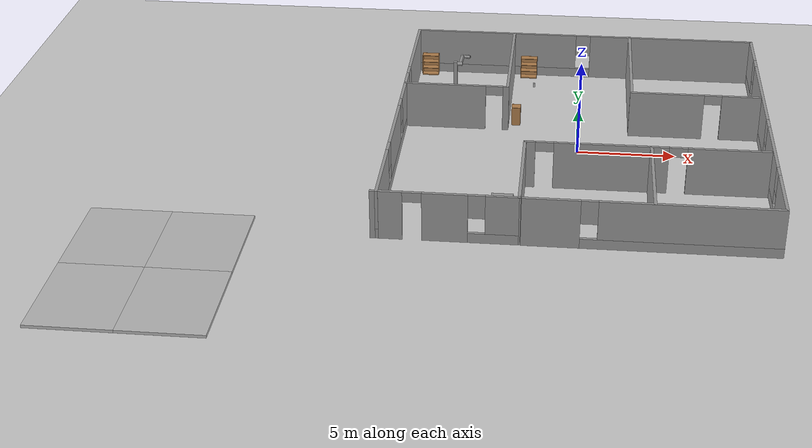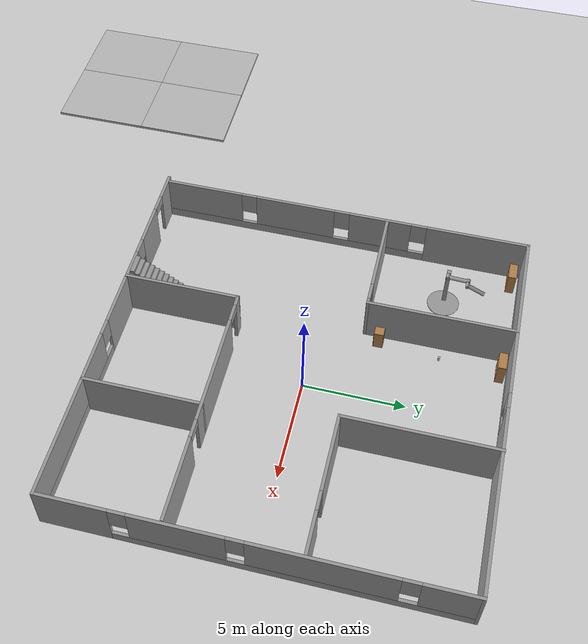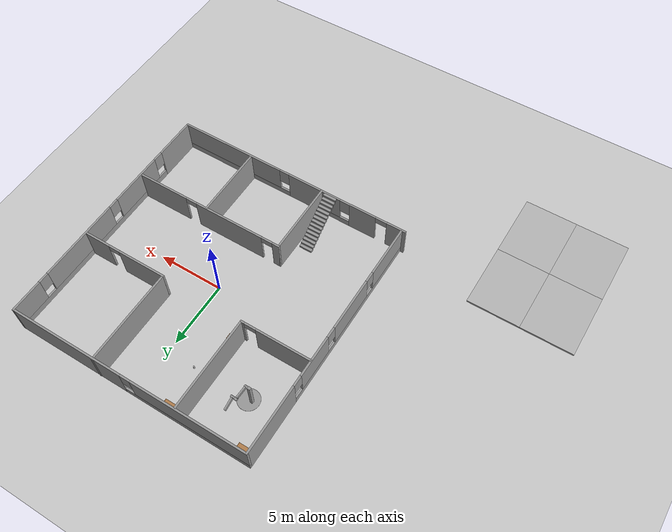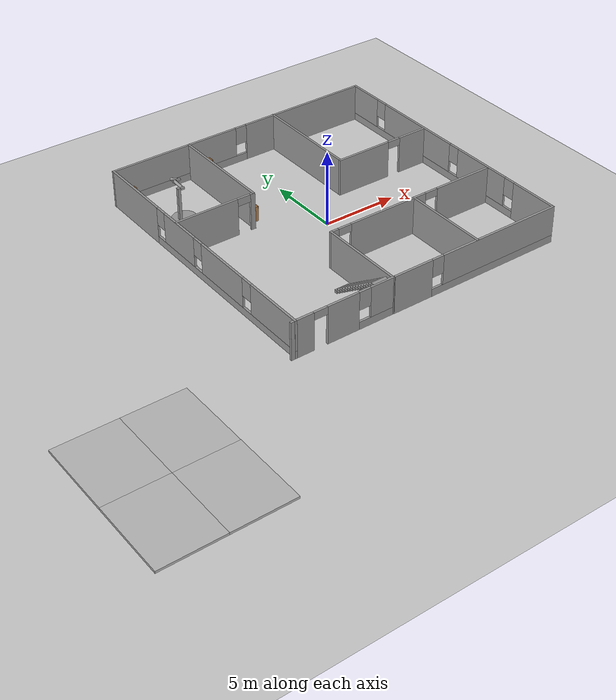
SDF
<sdf version="1.7">
 <world name="default">
  <model name="ground_plane">
   <static>1</static>
   <link name="link">
    <collision name="collision">
     <geometry><plane><normal>0 0 1</normal><size>100 100</size></plane></geometry>
     <surface><friction><ode><mu>100</mu><mu2>50</mu2></ode></friction></surface>
    </collision>
    <visual name="visual">
     <cast_shadows>0</cast_shadows>
     <geometry><plane><normal>0 0 1</normal><size>100 100</size></plane></geometry>
     <material>
      <script><uri>file://media/materials/scripts/gazebo.material</uri><name>Gazebo/Grey</name></script>
     </material>
    </visual>
   </link>
  </model>
  <model name="tony_house.world">
   <pose>0.003919 0.011841 0 0 -0 0</pose>
   <link name="Stairs_0">
    <visual name="Stairs_0_Visual_0">
     <pose>-3.39052 -5.99335 0.083333 0 -0 0</pose>
     <geometry><box><size>1 0.233333 0.166667</size></box></geometry>
     <material>
      <script><uri>file://media/materials/scripts/gazebo.material</uri><name>Gazebo/Grey</name></script>
      <ambient>1 1 1 1</ambient>
     </material>
     <meta><layer>0</layer></meta>
    </visual>
    <collision name="Stairs_0_Collision_0">
     <geometry><box><size>1 0.233333 0.166667</size></box></geometry>
     <pose>-3.39052 -5.99335 0.083333 0 -0 0</pose>
    </collision>
    <visual name="Stairs_0_Visual_1">
     <pose>-3.39052 -6.22668 0.25 0 -0 0</pose>
     <geometry><box><size>1 0.233333 0.166667</size></box></geometry>
     <material>
      <script><uri>file://media/materials/scripts/gazebo.material</uri><name>Gazebo/Grey</name></script>
      <ambient>1 1 1 1</ambient>
     </material>
     <meta><layer>0</layer></meta>
    </visual>
    <collision name="Stairs_0_Collision_1">
     <geometry><box><size>1 0.233333 0.166667</size></box></geometry>
     <pose>-3.39052 -6.22668 0.25 0 -0 0</pose>
    </collision>
    <visual name="Stairs_0_Visual_2">
     <pose>-3.39052 -6.46001 0.416667 0 -0 0</pose>
     <geometry><box><size>1 0.233333 0.166667</size></box></geometry>
     <material>
      <script><uri>file://media/materials/scripts/gazebo.material</uri><name>Gazebo/Grey</name></script>
      <ambient>1 1 1 1</ambient>
     </material>
     <meta><layer>0</layer></meta>
    </visual>
    <collision name="Stairs_0_Collision_2">
     <geometry><box><size>1 0.233333 0.166667</size></box></geometry>
     <pose>-3.39052 -6.46001 0.416667 0 -0 0</pose>
    </collision>
    <visual name="Stairs_0_Visual_3">
     <pose>-3.39052 -6.69335 0.583333 0 -0 0</pose>
     <geometry><box><size>1 0.233333 0.166667</size></box></geometry>
     <material>
      <script><uri>file://media/materials/scripts/gazebo.material</uri><name>Gazebo/Grey</name></script>
      <ambient>1 1 1 1</ambient>
     </material>
     <meta><layer>0</layer></meta>
    </visual>
    <collision name="Stairs_0_Collision_3">
     <geometry><box><size>1 0.233333 0.166667</size></box></geometry>
     <pose>-3.39052 -6.69335 0.583333 0 -0 0</pose>
    </collision>
    <visual name="Stairs_0_Visual_4">
     <pose>-3.39052 -6.92668 0.75 0 -0 0</pose>
     <geometry><box><size>1 0.233333 0.166667</size></box></geometry>
     <material>
      <script><uri>file://media/materials/scripts/gazebo.material</uri><name>Gazebo/Grey</name></script>
      <ambient>1 1 1 1</ambient>
     </material>
     <meta><layer>0</layer></meta>
    </visual>
    <collision name="Stairs_0_Collision_4">
     <geometry><box><size>1 0.233333 0.166667</size></box></geometry>
     <pose>-3.39052 -6.92668 0.75 0 -0 0</pose>
    </collision>
    <visual name="Stairs_0_Visual_5">
     <pose>-3.39052 -7.16001 0.916667 0 -0 0</pose>
     <geometry><box><size>1 0.233333 0.166667</size></box></geometry>
     <material>
      <script><uri>file://media/materials/scripts/gazebo.material</uri><name>Gazebo/Grey</name></script>
      <ambient>1 1 1 1</ambient>
     </material>
     <meta><layer>0</layer></meta>
    </visual>
    <collision name="Stairs_0_Collision_5">
     <geometry><box><size>1 0.233333 0.166667</size></box></geometry>
     <pose>-3.39052 -7.16001 0.916667 0 -0 0</pose>
    </collision>
    <visual name="Stairs_0_Visual_6">
     <pose>-3.39052 -7.39335 1.08333 0 -0 0</pose>
     <geometry><box><size>1 0.233333 0.166667</size></box></geometry>
     <material>
      <script><uri>file://media/materials/scripts/gazebo.material</uri><name>Gazebo/Grey</name></script>
      <ambient>1 1 1 1</ambient>
     </material>
     <meta><layer>0</layer></meta>
    </visual>
    <collision name="Stairs_0_Collision_6">
     <geometry><box><size>1 0.233333 0.166667</size></box></geometry>
     <pose>-3.39052 -7.39335 1.08333 0 -0 0</pose>
    </collision>
    <visual name="Stairs_0_Visual_7">
     <pose>-3.39052 -7.62668 1.25 0 -0 0</pose>
     <geometry><box><size>1 0.233333 0.166667</size></box></geometry>
     <material>
      <script><uri>file://media/materials/scripts/gazebo.material</uri><name>Gazebo/Grey</name></script>
      <ambient>1 1 1 1</ambient>
     </material>
     <meta><layer>0</layer></meta>
    </visual>
    <collision name="Stairs_0_Collision_7">
     <geometry><box><size>1 0.233333 0.166667</size></box></geometry>
     <pose>-3.39052 -7.62668 1.25 0 -0 0</pose>
    </collision>
    <visual name="Stairs_0_Visual_8">
     <pose>-3.39052 -7.86001 1.41667 0 -0 0</pose>
     <geometry><box><size>1 0.233333 0.166667</size></box></geometry>
     <material>
      <script><uri>file://media/materials/scripts/gazebo.material</uri><name>Gazebo/Grey</name></script>
      <ambient>1 1 1 1</ambient>
     </material>
     <meta><layer>0</layer></meta>
    </visual>
    <collision name="Stairs_0_Collision_8">
     <geometry><box><size>1 0.233333 0.166667</size></box></geometry>
     <pose>-3.39052 -7.86001 1.41667 0 -0 0</pose>
    </collision>
    <visual name="Stairs_0_Visual_9">
     <pose>-3.39052 -8.09335 1.58333 0 -0 0</pose>
     <geometry><box><size>1 0.233333 0.166667</size></box></geometry>
     <material>
      <script><uri>file://media/materials/scripts/gazebo.material</uri><name>Gazebo/Grey</name></script>
      <ambient>1 1 1 1</ambient>
     </material>
     <meta><layer>0</layer></meta>
    </visual>
    <collision name="Stairs_0_Collision_9">
     <geometry><box><size>1 0.233333 0.166667</size></box></geometry>
     <pose>-3.39052 -8.09335 1.58333 0 -0 0</pose>
    </collision>
    <visual name="Stairs_0_Visual_10">
     <pose>-3.39052 -8.32668 1.75 0 -0 0</pose>
     <geometry><box><size>1 0.233333 0.166667</size></box></geometry>
     <material>
      <script><uri>file://media/materials/scripts/gazebo.material</uri><name>Gazebo/Grey</name></script>
      <ambient>1 1 1 1</ambient>
     </material>
     <meta><layer>0</layer></meta>
    </visual>
    <collision name="Stairs_0_Collision_10">
     <geometry><box><size>1 0.233333 0.166667</size></box></geometry>
     <pose>-3.39052 -8.32668 1.75 0 -0 0</pose>
    </collision>
    <visual name="Stairs_0_Visual_11">
     <pose>-3.39052 -8.56001 1.91667 0 -0 0</pose>
     <geometry><box><size>1 0.233333 0.166667</size></box></geometry>
     <material>
      <script><uri>file://media/materials/scripts/gazebo.material</uri><name>Gazebo/Grey</name></script>
      <ambient>1 1 1 1</ambient>
     </material>
     <meta><layer>0</layer></meta>
    </visual>
    <collision name="Stairs_0_Collision_11">
     <geometry><box><size>1 0.233333 0.166667</size></box></geometry>
     <pose>-3.39052 -8.56001 1.91667 0 -0 0</pose>
    </collision>
    <visual name="Stairs_0_Visual_12">
     <pose>-3.39052 -8.79335 2.08333 0 -0 0</pose>
     <geometry><box><size>1 0.233333 0.166667</size></box></geometry>
     <material>
      <script><uri>file://media/materials/scripts/gazebo.material</uri><name>Gazebo/Grey</name></script>
      <ambient>1 1 1 1</ambient>
     </material>
     <meta><layer>0</layer></meta>
    </visual>
    <collision name="Stairs_0_Collision_12">
     <geometry><box><size>1 0.233333 0.166667</size></box></geometry>
     <pose>-3.39052 -8.79335 2.08333 0 -0 0</pose>
    </collision>
    <visual name="Stairs_0_Visual_13">
     <pose>-3.39052 -9.02668 2.25 0 -0 0</pose>
     <geometry><box><size>1 0.233333 0.166667</size></box></geometry>
     <material>
      <script><uri>file://media/materials/scripts/gazebo.material</uri><name>Gazebo/Grey</name></script>
      <ambient>1 1 1 1</ambient>
     </material>
     <meta><layer>0</layer></meta>
    </visual>
    <collision name="Stairs_0_Collision_13">
     <geometry><box><size>1 0.233333 0.166667</size></box></geometry>
     <pose>-3.39052 -9.02668 2.25 0 -0 0</pose>
    </collision>
    <visual name="Stairs_0_Visual_14">
     <pose>-3.39052 -9.26001 2.41667 0 -0 0</pose>
     <geometry><box><size>1 0.233333 0.166667</size></box></geometry>
     <material>
      <script><uri>file://media/materials/scripts/gazebo.material</uri><name>Gazebo/Grey</name></script>
      <ambient>1 1 1 1</ambient>
     </material>
     <meta><layer>0</layer></meta>
    </visual>
    <collision name="Stairs_0_Collision_14">
     <geometry><box><size>1 0.233333 0.166667</size></box></geometry>
     <pose>-3.39052 -9.26001 2.41667 0 -0 0</pose>
    </collision>
   </link>
   <link name="Wall_1">
    <pose>-6.01156 -9.43056 0 0 -0 0.001171</pose>
    <visual name="Wall_1_Visual_0">
     <pose>-2.72986 0 1.25 0 -0 0</pose>
     <geometry><box><size>1.51416 0.15 2.5</size></box></geometry>
     <material>
      <script><uri>file://media/materials/scripts/gazebo.material</uri><name>Gazebo/Grey</name></script>
      <ambient>1 1 1 1</ambient>
     </material>
     <meta><layer>0</layer></meta>
    </visual>
    <collision name="Wall_1_Collision_0">
     <geometry><box><size>1.51416 0.15 2.5</size></box></geometry>
     <pose>-2.72986 0 1.25 0 -0 0</pose>
    </collision>
    <visual name="Wall_1_Visual_1">
     <pose>-0.004916 0 1.25 0 -0 0</pose>
     <geometry><box><size>2.13573 0.15 2.5</size></box></geometry>
     <material>
      <script><uri>file://media/materials/scripts/gazebo.material</uri><name>Gazebo/Grey</name></script>
      <ambient>1 1 1 1</ambient>
     </material>
     <meta><layer>0</layer></meta>
    </visual>
    <collision name="Wall_1_Collision_1">
     <geometry><box><size>2.13573 0.15 2.5</size></box></geometry>
     <pose>-0.004916 0 1.25 0 -0 0</pose>
    </collision>
    <visual name="Wall_1_Visual_2">
     <pose>2.27494 0 0.25 0 -0 0</pose>
     <geometry><box><size>2.42399 0.15 0.5</size></box></geometry>
     <material>
      <script><uri>file://media/materials/scripts/gazebo.material</uri><name>Gazebo/Grey</name></script>
      <ambient>1 1 1 1</ambient>
     </material>
     <meta><layer>0</layer></meta>
    </visual>
    <collision name="Wall_1_Collision_2">
     <geometry><box><size>2.42399 0.15 0.5</size></box></geometry>
     <pose>2.27494 0 0.25 0 -0 0</pose>
    </collision>
    <visual name="Wall_1_Visual_3">
     <pose>2.67494 0 1.5 0 -0 0</pose>
     <geometry><box><size>1.62399 0.15 2</size></box></geometry>
     <material>
      <script><uri>file://media/materials/scripts/gazebo.material</uri><name>Gazebo/Grey</name></script>
      <ambient>1 1 1 1</ambient>
     </material>
     <meta><layer>0</layer></meta>
    </visual>
    <collision name="Wall_1_Collision_3">
     <geometry><box><size>1.62399 0.15 2</size></box></geometry>
     <pose>2.67494 0 1.5 0 -0 0</pose>
    </collision>
    <visual name="Wall_1_Visual_4">
     <pose>1.46295 0 1.9 0 -0 0</pose>
     <geometry><box><size>0.8 0.15 1.2</size></box></geometry>
     <material>
      <script><uri>file://media/materials/scripts/gazebo.material</uri><name>Gazebo/Grey</name></script>
      <ambient>1 1 1 1</ambient>
     </material>
     <meta><layer>0</layer></meta>
    </visual>
    <collision name="Wall_1_Collision_4">
     <geometry><box><size>0.8 0.15 1.2</size></box></geometry>
     <pose>1.46295 0 1.9 0 -0 0</pose>
    </collision>
    <visual name="Wall_1_Visual_5">
     <pose>-1.52278 0 2.25 0 -0 0</pose>
     <geometry><box><size>0.9 0.15 0.5</size></box></geometry>
     <material>
      <script><uri>file://media/materials/scripts/gazebo.material</uri><name>Gazebo/Grey</name></script>
      <ambient>1 1 1 1</ambient>
     </material>
     <meta><layer>0</layer></meta>
    </visual>
    <collision name="Wall_1_Collision_5">
     <geometry><box><size>0.9 0.15 0.5</size></box></geometry>
     <pose>-1.52278 0 2.25 0 -0 0</pose>
    </collision>
   </link>
   <link name="Wall_10">
    <pose>3.32538 -3.82656 0 0 -0 0</pose>
    <visual name="Wall_10_Visual_0">
     <pose>-5.70576 0 1.25 0 -0 0</pose>
     <geometry><box><size>0.588485 0.15 2.5</size></box></geometry>
     <material>
      <script><uri>file://media/materials/scripts/gazebo.material</uri><name>Gazebo/Grey</name></script>
      <ambient>1 1 1 1</ambient>
     </material>
     <meta><layer>0</layer></meta>
    </visual>
    <collision name="Wall_10_Collision_0">
     <geometry><box><size>0.588485 0.15 2.5</size></box></geometry>
     <pose>-5.70576 0 1.25 0 -0 0</pose>
    </collision>
    <visual name="Wall_10_Visual_1">
     <pose>-1.72323 0 1.25 0 -0 0</pose>
     <geometry><box><size>5.57657 0.15 2.5</size></box></geometry>
     <material>
      <script><uri>file://media/materials/scripts/gazebo.material</uri><name>Gazebo/Grey</name></script>
      <ambient>1 1 1 1</ambient>
     </material>
     <meta><layer>0</layer></meta>
    </visual>
    <collision name="Wall_10_Collision_1">
     <geometry><box><size>5.57657 0.15 2.5</size></box></geometry>
     <pose>-1.72323 0 1.25 0 -0 0</pose>
    </collision>
    <visual name="Wall_10_Visual_2">
     <pose>3.98253 0 1.25 0 -0 0</pose>
     <geometry><box><size>4.03494 0.15 2.5</size></box></geometry>
     <material>
      <script><uri>file://media/materials/scripts/gazebo.material</uri><name>Gazebo/Grey</name></script>
      <ambient>1 1 1 1</ambient>
     </material>
     <meta><layer>0</layer></meta>
    </visual>
    <collision name="Wall_10_Collision_2">
     <geometry><box><size>4.03494 0.15 2.5</size></box></geometry>
     <pose>3.98253 0 1.25 0 -0 0</pose>
    </collision>
    <visual name="Wall_10_Visual_3">
     <pose>-4.96152 0 2.25 0 -0 0</pose>
     <geometry><box><size>0.9 0.15 0.5</size></box></geometry>
     <material>
      <script><uri>file://media/materials/scripts/gazebo.material</uri><name>Gazebo/Grey</name></script>
      <ambient>1 1 1 1</ambient>
     </material>
     <meta><layer>0</layer></meta>
    </visual>
    <collision name="Wall_10_Collision_3">
     <geometry><box><size>0.9 0.15 0.5</size></box></geometry>
     <pose>-4.96152 0 2.25 0 -0 0</pose>
    </collision>
    <visual name="Wall_10_Visual_4">
     <pose>1.51506 0 2.25 0 -0 0</pose>
     <geometry><box><size>0.9 0.15 0.5</size></box></geometry>
     <material>
      <script><uri>file://media/materials/scripts/gazebo.material</uri><name>Gazebo/Grey</name></script>
      <ambient>1 1 1 1</ambient>
     </material>
     <meta><layer>0</layer></meta>
    </visual>
    <collision name="Wall_10_Collision_4">
     <geometry><box><size>0.9 0.15 0.5</size></box></geometry>
     <pose>1.51506 0 2.25 0 -0 0</pose>
    </collision>
   </link>
   <link name="Wall_12">
    <collision name="Wall_12_Collision">
     <geometry><box><size>5.75 0.15 2.5</size></box></geometry>
     <pose>0 0 1.25 0 -0 0</pose>
    </collision>
    <visual name="Wall_12_Visual">
     <pose>0 0 1.25 0 -0 0</pose>
     <geometry><box><size>5.75 0.15 2.5</size></box></geometry>
     <material>
      <script><uri>file://media/materials/scripts/gazebo.material</uri><name>Gazebo/Grey</name></script>
      <ambient>1 1 1 1</ambient>
     </material>
     <meta><layer>0</layer></meta>
    </visual>
    <pose>3.54453 -6.62656 0 0 -0 -1.5708</pose>
   </link>
   <link name="Wall_14">
    <pose>5.98556 2.23237 0 0 -0 0</pose>
    <visual name="Wall_14_Visual_0">
     <pose>-1.46444 0 1.25 0 -0 0</pose>
     <geometry><box><size>3.82112 0.15 2.5</size></box></geometry>
     <material>
      <script><uri>file://media/materials/scripts/gazebo.material</uri><name>Gazebo/Grey</name></script>
      <ambient>1 1 1 1</ambient>
     </material>
     <meta><layer>0</layer></meta>
    </visual>
    <collision name="Wall_14_Collision_0">
     <geometry><box><size>3.82112 0.15 2.5</size></box></geometry>
     <pose>-1.46444 0 1.25 0 -0 0</pose>
    </collision>
    <visual name="Wall_14_Visual_1">
     <pose>2.36056 0 1.25 0 -0 0</pose>
     <geometry><box><size>2.02888 0.15 2.5</size></box></geometry>
     <material>
      <script><uri>file://media/materials/scripts/gazebo.material</uri><name>Gazebo/Grey</name></script>
      <ambient>1 1 1 1</ambient>
     </material>
     <meta><layer>0</layer></meta>
    </visual>
    <collision name="Wall_14_Collision_1">
     <geometry><box><size>2.02888 0.15 2.5</size></box></geometry>
     <pose>2.36056 0 1.25 0 -0 0</pose>
    </collision>
    <visual name="Wall_14_Visual_2">
     <pose>0.896121 0 2.25 0 -0 0</pose>
     <geometry><box><size>0.9 0.15 0.5</size></box></geometry>
     <material>
      <script><uri>file://media/materials/scripts/gazebo.material</uri><name>Gazebo/Grey</name></script>
      <ambient>1 1 1 1</ambient>
     </material>
     <meta><layer>0</layer></meta>
    </visual>
    <collision name="Wall_14_Collision_2">
     <geometry><box><size>0.9 0.15 0.5</size></box></geometry>
     <pose>0.896121 0 2.25 0 -0 0</pose>
    </collision>
   </link>
   <link name="Wall_18">
    <collision name="Wall_18_Collision">
     <geometry><box><size>7.25 0.15 2.5</size></box></geometry>
     <pose>0 0 1.25 0 -0 0</pose>
    </collision>
    <visual name="Wall_18_Visual">
     <pose>0 0 1.25 0 -0 0</pose>
     <geometry><box><size>7.25 0.15 2.5</size></box></geometry>
     <material>
      <script><uri>file://media/materials/scripts/gazebo.material</uri><name>Gazebo/Grey</name></script>
      <ambient>1 1 1 1</ambient>
     </material>
     <meta><layer>0</layer></meta>
    </visual>
    <pose>-3.77724 5.84349 0 0 -0 -1.5708</pose>
   </link>
   <link name="Wall_20">
    <collision name="Wall_20_Collision">
     <geometry><box><size>7.25 0.15 2.5</size></box></geometry>
     <pose>0 0 1.25 0 -0 0</pose>
    </collision>
    <visual name="Wall_20_Visual">
     <pose>0 0 1.25 0 -0 0</pose>
     <geometry><box><size>7.25 0.15 2.5</size></box></geometry>
     <material>
      <script><uri>file://media/materials/scripts/gazebo.material</uri><name>Gazebo/Grey</name></script>
      <ambient>1 1 1 1</ambient>
     </material>
     <meta><layer>0</layer></meta>
    </visual>
    <pose>2.68958 5.89002 0 0 -0 -1.5708</pose>
   </link>
   <link name="Wall_22">
    <pose>-6.45224 2.29349 0 0 -0 3.14159</pose>
    <visual name="Wall_22_Visual_0">
     <pose>-2.58857 0 1.25 0 -0 0</pose>
     <geometry><box><size>0.322859 0.15 2.5</size></box></geometry>
     <material>
      <script><uri>file://media/materials/scripts/gazebo.material</uri><name>Gazebo/Grey</name></script>
      <ambient>1 1 1 1</ambient>
     </material>
     <meta><layer>0</layer></meta>
    </visual>
    <collision name="Wall_22_Collision_0">
     <geometry><box><size>0.322859 0.15 2.5</size></box></geometry>
     <pose>-2.58857 0 1.25 0 -0 0</pose>
    </collision>
    <visual name="Wall_22_Visual_1">
     <pose>0.611429 0 1.25 0 -0 0</pose>
     <geometry><box><size>4.27714 0.15 2.5</size></box></geometry>
     <material>
      <script><uri>file://media/materials/scripts/gazebo.material</uri><name>Gazebo/Grey</name></script>
      <ambient>1 1 1 1</ambient>
     </material>
     <meta><layer>0</layer></meta>
    </visual>
    <collision name="Wall_22_Collision_1">
     <geometry><box><size>4.27714 0.15 2.5</size></box></geometry>
     <pose>0.611429 0 1.25 0 -0 0</pose>
    </collision>
    <visual name="Wall_22_Visual_2">
     <pose>-1.97714 0 2.25 0 -0 0</pose>
     <geometry><box><size>0.9 0.15 0.5</size></box></geometry>
     <material>
      <script><uri>file://media/materials/scripts/gazebo.material</uri><name>Gazebo/Grey</name></script>
      <ambient>1 1 1 1</ambient>
     </material>
     <meta><layer>0</layer></meta>
    </visual>
    <collision name="Wall_22_Collision_2">
     <geometry><box><size>0.9 0.15 0.5</size></box></geometry>
     <pose>-1.97714 0 2.25 0 -0 0</pose>
    </collision>
   </link>
   <link name="Wall_24">
    <collision name="Wall_24_Collision">
     <geometry><box><size>5.75 0.15 2.5</size></box></geometry>
     <pose>0 0 1.25 0 -0 0</pose>
    </collision>
    <visual name="Wall_24_Visual">
     <pose>0 0 1.25 0 -0 0</pose>
     <geometry><box><size>5.75 0.15 2.5</size></box></geometry>
     <material>
      <script><uri>file://media/materials/scripts/gazebo.material</uri><name>Gazebo/Grey</name></script>
      <ambient>1 1 1 1</ambient>
     </material>
     <meta><layer>0</layer></meta>
    </visual>
    <pose>-2.59962 -6.62656 0 0 -0 -1.5708</pose>
   </link>
   <link name="Wall_3">
    <pose>3.49858 -9.44002 0 0 -0 0</pose>
    <visual name="Wall_3_Visual_0">
     <pose>-4.64469 0 1.25 0 -0 0</pose>
     <geometry><box><size>2.71062 0.15 2.5</size></box></geometry>
     <material>
      <script><uri>file://media/materials/scripts/gazebo.material</uri><name>Gazebo/Grey</name></script>
      <ambient>1 1 1 1</ambient>
     </material>
     <meta><layer>0</layer></meta>
    </visual>
    <collision name="Wall_3_Collision_0">
     <geometry><box><size>2.71062 0.15 2.5</size></box></geometry>
     <pose>-4.64469 0 1.25 0 -0 0</pose>
    </collision>
    <visual name="Wall_3_Visual_1">
     <pose>1.35531 0 0.25 0 -0 0</pose>
     <geometry><box><size>9.28938 0.15 0.5</size></box></geometry>
     <material>
      <script><uri>file://media/materials/scripts/gazebo.material</uri><name>Gazebo/Grey</name></script>
      <ambient>1 1 1 1</ambient>
     </material>
     <meta><layer>0</layer></meta>
    </visual>
    <collision name="Wall_3_Collision_1">
     <geometry><box><size>9.28938 0.15 0.5</size></box></geometry>
     <pose>1.35531 0 0.25 0 -0 0</pose>
    </collision>
    <visual name="Wall_3_Visual_2">
     <pose>1.75531 0 1.5 0 -0 0</pose>
     <geometry><box><size>8.48938 0.15 2</size></box></geometry>
     <material>
      <script><uri>file://media/materials/scripts/gazebo.material</uri><name>Gazebo/Grey</name></script>
      <ambient>1 1 1 1</ambient>
     </material>
     <meta><layer>0</layer></meta>
    </visual>
    <collision name="Wall_3_Collision_2">
     <geometry><box><size>8.48938 0.15 2</size></box></geometry>
     <pose>1.75531 0 1.5 0 -0 0</pose>
    </collision>
    <visual name="Wall_3_Visual_3">
     <pose>-2.88938 0 1.9 0 -0 0</pose>
     <geometry><box><size>0.8 0.15 1.2</size></box></geometry>
     <material>
      <script><uri>file://media/materials/scripts/gazebo.material</uri><name>Gazebo/Grey</name></script>
      <ambient>1 1 1 1</ambient>
     </material>
     <meta><layer>0</layer></meta>
    </visual>
    <collision name="Wall_3_Collision_3">
     <geometry><box><size>0.8 0.15 1.2</size></box></geometry>
     <pose>-2.88938 0 1.9 0 -0 0</pose>
    </collision>
   </link>
   <link name="Wall_4">
    <pose>9.42358 -0.015016 0 0 -0 1.5708</pose>
    <visual name="Wall_4_Visual_0">
     <pose>-7.8218 0 1.25 0 -0 0</pose>
     <geometry><box><size>3.3564 0.15 2.5</size></box></geometry>
     <material>
      <script><uri>file://media/materials/scripts/gazebo.material</uri><name>Gazebo/Grey</name></script>
      <ambient>1 1 1 1</ambient>
     </material>
     <meta><layer>0</layer></meta>
    </visual>
    <collision name="Wall_4_Collision_0">
     <geometry><box><size>3.3564 0.15 2.5</size></box></geometry>
     <pose>-7.8218 0 1.25 0 -0 0</pose>
    </collision>
    <visual name="Wall_4_Visual_1">
     <pose>1.6782 0 0.25 0 -0 0</pose>
     <geometry><box><size>15.6436 0.15 0.5</size></box></geometry>
     <material>
      <script><uri>file://media/materials/scripts/gazebo.material</uri><name>Gazebo/Grey</name></script>
      <ambient>1 1 1 1</ambient>
     </material>
     <meta><layer>0</layer></meta>
    </visual>
    <collision name="Wall_4_Collision_1">
     <geometry><box><size>15.6436 0.15 0.5</size></box></geometry>
     <pose>1.6782 0 0.25 0 -0 0</pose>
    </collision>
    <visual name="Wall_4_Visual_2">
     <pose>-3.21561 0 1.5 0 -0 0</pose>
     <geometry><box><size>4.25599 0.15 2</size></box></geometry>
     <material>
      <script><uri>file://media/materials/scripts/gazebo.material</uri><name>Gazebo/Grey</name></script>
      <ambient>1 1 1 1</ambient>
     </material>
     <meta><layer>0</layer></meta>
    </visual>
    <collision name="Wall_4_Collision_2">
     <geometry><box><size>4.25599 0.15 2</size></box></geometry>
     <pose>-3.21561 0 1.5 0 -0 0</pose>
    </collision>
    <visual name="Wall_4_Visual_3">
     <pose>2.94431 0 1.5 0 -0 0</pose>
     <geometry><box><size>6.46384 0.15 2</size></box></geometry>
     <material>
      <script><uri>file://media/materials/scripts/gazebo.material</uri><name>Gazebo/Grey</name></script>
      <ambient>1 1 1 1</ambient>
     </material>
     <meta><layer>0</layer></meta>
    </visual>
    <collision name="Wall_4_Collision_3">
     <geometry><box><size>6.46384 0.15 2</size></box></geometry>
     <pose>2.94431 0 1.5 0 -0 0</pose>
    </collision>
    <visual name="Wall_4_Visual_4">
     <pose>8.23811 0 1.5 0 -0 0</pose>
     <geometry><box><size>2.52377 0.15 2</size></box></geometry>
     <material>
      <script><uri>file://media/materials/scripts/gazebo.material</uri><name>Gazebo/Grey</name></script>
      <ambient>1 1 1 1</ambient>
     </material>
     <meta><layer>0</layer></meta>
    </visual>
    <collision name="Wall_4_Collision_4">
     <geometry><box><size>2.52377 0.15 2</size></box></geometry>
     <pose>8.23811 0 1.5 0 -0 0</pose>
    </collision>
    <visual name="Wall_4_Visual_5">
     <pose>-5.7436 0 1.9 0 -0 0</pose>
     <geometry><box><size>0.8 0.15 1.2</size></box></geometry>
     <material>
      <script><uri>file://media/materials/scripts/gazebo.material</uri><name>Gazebo/Grey</name></script>
      <ambient>1 1 1 1</ambient>
     </material>
     <meta><layer>0</layer></meta>
    </visual>
    <collision name="Wall_4_Collision_5">
     <geometry><box><size>0.8 0.15 1.2</size></box></geometry>
     <pose>-5.7436 0 1.9 0 -0 0</pose>
    </collision>
    <visual name="Wall_4_Visual_6">
     <pose>-0.687612 0 1.9 0 -0 0</pose>
     <geometry><box><size>0.8 0.15 1.2</size></box></geometry>
     <material>
      <script><uri>file://media/materials/scripts/gazebo.material</uri><name>Gazebo/Grey</name></script>
      <ambient>1 1 1 1</ambient>
     </material>
     <meta><layer>0</layer></meta>
    </visual>
    <collision name="Wall_4_Collision_6">
     <geometry><box><size>0.8 0.15 1.2</size></box></geometry>
     <pose>-0.687612 0 1.9 0 -0 0</pose>
    </collision>
    <visual name="Wall_4_Visual_7">
     <pose>6.57623 0 1.9 0 -0 0</pose>
     <geometry><box><size>0.8 0.15 1.2</size></box></geometry>
     <material>
      <script><uri>file://media/materials/scripts/gazebo.material</uri><name>Gazebo/Grey</name></script>
      <ambient>1 1 1 1</ambient>
     </material>
     <meta><layer>0</layer></meta>
    </visual>
    <collision name="Wall_4_Collision_7">
     <geometry><box><size>0.8 0.15 1.2</size></box></geometry>
     <pose>6.57623 0 1.9 0 -0 0</pose>
    </collision>
   </link>
   <link name="Wall_5">
    <pose>0.123583 9.40998 0 0 -0 3.14159</pose>
    <visual name="Wall_5_Visual_0">
     <pose>-4.87823 0 1.25 0 -0 0</pose>
     <geometry><box><size>8.99354 0.15 2.5</size></box></geometry>
     <material>
      <script><uri>file://media/materials/scripts/gazebo.material</uri><name>Gazebo/Grey</name></script>
      <ambient>1 1 1 1</ambient>
     </material>
     <meta><layer>0</layer></meta>
    </visual>
    <collision name="Wall_5_Collision_0">
     <geometry><box><size>8.99354 0.15 2.5</size></box></geometry>
     <pose>-4.87823 0 1.25 0 -0 0</pose>
    </collision>
    <visual name="Wall_5_Visual_1">
     <pose>4.49677 0 0.25 0 -0 0</pose>
     <geometry><box><size>9.75646 0.15 0.5</size></box></geometry>
     <material>
      <script><uri>file://media/materials/scripts/gazebo.material</uri><name>Gazebo/Grey</name></script>
      <ambient>1 1 1 1</ambient>
     </material>
     <meta><layer>0</layer></meta>
    </visual>
    <collision name="Wall_5_Collision_1">
     <geometry><box><size>9.75646 0.15 0.5</size></box></geometry>
     <pose>4.49677 0 0.25 0 -0 0</pose>
    </collision>
    <visual name="Wall_5_Visual_2">
     <pose>4.89677 0 1.5 0 -0 0</pose>
     <geometry><box><size>8.95646 0.15 2</size></box></geometry>
     <material>
      <script><uri>file://media/materials/scripts/gazebo.material</uri><name>Gazebo/Grey</name></script>
      <ambient>1 1 1 1</ambient>
     </material>
     <meta><layer>0</layer></meta>
    </visual>
    <collision name="Wall_5_Collision_2">
     <geometry><box><size>8.95646 0.15 2</size></box></geometry>
     <pose>4.89677 0 1.5 0 -0 0</pose>
    </collision>
    <visual name="Wall_5_Visual_3">
     <pose>0.018538 0 1.9 0 -0 0</pose>
     <geometry><box><size>0.8 0.15 1.2</size></box></geometry>
     <material>
      <script><uri>file://media/materials/scripts/gazebo.material</uri><name>Gazebo/Grey</name></script>
      <ambient>1 1 1 1</ambient>
     </material>
     <meta><layer>0</layer></meta>
    </visual>
    <collision name="Wall_5_Collision_3">
     <geometry><box><size>0.8 0.15 1.2</size></box></geometry>
     <pose>0.018538 0 1.9 0 -0 0</pose>
    </collision>
   </link>
   <link name="Wall_6">
    <pose>-9.17642 -0.015016 0 0 -0 -1.5708</pose>
    <visual name="Wall_6_Visual_0">
     <pose>-6.9156 0 1.25 0 -0 0</pose>
     <geometry><box><size>5.1688 0.15 2.5</size></box></geometry>
     <material>
      <script><uri>file://media/materials/scripts/gazebo.material</uri><name>Gazebo/Grey</name></script>
      <ambient>1 1 1 1</ambient>
     </material>
     <meta><layer>0</layer></meta>
    </visual>
    <collision name="Wall_6_Collision_0">
     <geometry><box><size>5.1688 0.15 2.5</size></box></geometry>
     <pose>-6.9156 0 1.25 0 -0 0</pose>
    </collision>
    <visual name="Wall_6_Visual_1">
     <pose>2.5844 0 0.25 0 -0 0</pose>
     <geometry><box><size>13.8312 0.15 0.5</size></box></geometry>
     <material>
      <script><uri>file://media/materials/scripts/gazebo.material</uri><name>Gazebo/Grey</name></script>
      <ambient>1 1 1 1</ambient>
     </material>
     <meta><layer>0</layer></meta>
    </visual>
    <collision name="Wall_6_Collision_1">
     <geometry><box><size>13.8312 0.15 0.5</size></box></geometry>
     <pose>2.5844 0 0.25 0 -0 0</pose>
    </collision>
    <visual name="Wall_6_Visual_2">
     <pose>-1.94373 0 1.5 0 -0 0</pose>
     <geometry><box><size>3.17493 0.15 2</size></box></geometry>
     <material>
      <script><uri>file://media/materials/scripts/gazebo.material</uri><name>Gazebo/Grey</name></script>
      <ambient>1 1 1 1</ambient>
     </material>
     <meta><layer>0</layer></meta>
    </visual>
    <collision name="Wall_6_Collision_2">
     <geometry><box><size>3.17493 0.15 2</size></box></geometry>
     <pose>-1.94373 0 1.5 0 -0 0</pose>
    </collision>
    <visual name="Wall_6_Visual_3">
     <pose>2.50201 0 1.5 0 -0 0</pose>
     <geometry><box><size>4.11655 0.15 2</size></box></geometry>
     <material>
      <script><uri>file://media/materials/scripts/gazebo.material</uri><name>Gazebo/Grey</name></script>
      <ambient>1 1 1 1</ambient>
     </material>
     <meta><layer>0</layer></meta>
    </visual>
    <collision name="Wall_6_Collision_3">
     <geometry><box><size>4.11655 0.15 2</size></box></geometry>
     <pose>2.50201 0 1.5 0 -0 0</pose>
    </collision>
    <visual name="Wall_6_Visual_4">
     <pose>7.43014 0 1.5 0 -0 0</pose>
     <geometry><box><size>4.13971 0.15 2</size></box></geometry>
     <material>
      <script><uri>file://media/materials/scripts/gazebo.material</uri><name>Gazebo/Grey</name></script>
      <ambient>1 1 1 1</ambient>
     </material>
     <meta><layer>0</layer></meta>
    </visual>
    <collision name="Wall_6_Collision_4">
     <geometry><box><size>4.13971 0.15 2</size></box></geometry>
     <pose>7.43014 0 1.5 0 -0 0</pose>
    </collision>
    <visual name="Wall_6_Visual_5">
     <pose>-3.9312 0 1.9 0 -0 0</pose>
     <geometry><box><size>0.8 0.15 1.2</size></box></geometry>
     <material>
      <script><uri>file://media/materials/scripts/gazebo.material</uri><name>Gazebo/Grey</name></script>
      <ambient>1 1 1 1</ambient>
     </material>
     <meta><layer>0</layer></meta>
    </visual>
    <collision name="Wall_6_Collision_5">
     <geometry><box><size>0.8 0.15 1.2</size></box></geometry>
     <pose>-3.9312 0 1.9 0 -0 0</pose>
    </collision>
    <visual name="Wall_6_Visual_6">
     <pose>0.043735 0 1.9 0 -0 0</pose>
     <geometry><box><size>0.8 0.15 1.2</size></box></geometry>
     <material>
      <script><uri>file://media/materials/scripts/gazebo.material</uri><name>Gazebo/Grey</name></script>
      <ambient>1 1 1 1</ambient>
     </material>
     <meta><layer>0</layer></meta>
    </visual>
    <collision name="Wall_6_Collision_6">
     <geometry><box><size>0.8 0.15 1.2</size></box></geometry>
     <pose>0.043735 0 1.9 0 -0 0</pose>
    </collision>
    <visual name="Wall_6_Visual_7">
     <pose>4.96028 0 1.9 0 -0 0</pose>
     <geometry><box><size>0.8 0.15 1.2</size></box></geometry>
     <material>
      <script><uri>file://media/materials/scripts/gazebo.material</uri><name>Gazebo/Grey</name></script>
      <ambient>1 1 1 1</ambient>
     </material>
     <meta><layer>0</layer></meta>
    </visual>
    <collision name="Wall_6_Collision_7">
     <geometry><box><size>0.8 0.15 1.2</size></box></geometry>
     <pose>4.96028 0 1.9 0 -0 0</pose>
    </collision>
   </link>
   <static>1</static>
  </model>
  <model name="bookshelf">
   <static>1</static>
   <link name="link">
    <inertial><mass>1</mass></inertial>
    <collision name="back">
     <pose>0 0.005 0.6 0 -0 0</pose>
     <geometry><box><size>0.9 0.01 1.2</size></box></geometry>
    </collision>
    <visual name="visual1">
     <pose>0 0.005 0.6 0 -0 0</pose>
     <geometry><box><size>0.9 0.01 1.2</size></box></geometry>
     <material>
      <script><uri>file://media/materials/scripts/gazebo.material</uri><name>Gazebo/Wood</name></script>
     </material>
    </visual>
    <collision name="left_side">
     <pose>0.45 -0.195 0.6 0 -0 0</pose>
     <geometry><box><size>0.02 0.4 1.2</size></box></geometry>
    </collision>
    <visual name="visual2">
     <pose>0.45 -0.195 0.6 0 -0 0</pose>
     <geometry><box><size>0.02 0.4 1.2</size></box></geometry>
     <material>
      <script><uri>file://media/materials/scripts/gazebo.material</uri><name>Gazebo/Wood</name></script>
     </material>
    </visual>
    <collision name="right_side">
     <pose>-0.45 -0.195 0.6 0 -0 0</pose>
     <geometry><box><size>0.02 0.4 1.2</size></box></geometry>
    </collision>
    <visual name="visual3">
     <pose>-0.45 -0.195 0.6 0 -0 0</pose>
     <geometry><box><size>0.02 0.4 1.2</size></box></geometry>
     <material>
      <script><uri>file://media/materials/scripts/gazebo.material</uri><name>Gazebo/Wood</name></script>
     </material>
    </visual>
    <collision name="bottom">
     <pose>0 -0.195 0.03 0 -0 0</pose>
     <geometry><box><size>0.88 0.4 0.06</size></box></geometry>
    </collision>
    <visual name="visual4">
     <pose>0 -0.195 0.03 0 -0 0</pose>
     <geometry><box><size>0.88 0.4 0.06</size></box></geometry>
     <material>
      <script><uri>file://media/materials/scripts/gazebo.material</uri><name>Gazebo/Wood</name></script>
     </material>
    </visual>
    <collision name="top">
     <pose>0 -0.195 1.19 0 -0 0</pose>
     <geometry><box><size>0.88 0.4 0.02</size></box></geometry>
    </collision>
    <visual name="visual5">
     <pose>0 -0.195 1.19 0 -0 0</pose>
     <geometry><box><size>0.88 0.4 0.02</size></box></geometry>
     <material>
      <script><uri>file://media/materials/scripts/gazebo.material</uri><name>Gazebo/Wood</name></script>
     </material>
    </visual>
    <collision name="low_shelf">
     <pose>0 -0.195 0.43 0 -0 0</pose>
     <geometry><box><size>0.88 0.4 0.02</size></box></geometry>
    </collision>
    <visual name="visual6">
     <pose>0 -0.195 0.43 0 -0 0</pose>
     <geometry><box><size>0.88 0.4 0.02</size></box></geometry>
     <material>
      <script><uri>file://media/materials/scripts/gazebo.material</uri><name>Gazebo/Wood</name></script>
     </material>
    </visual>
    <collision name="high_shelf">
     <pose>0 -0.195 0.8 0 -0 0</pose>
     <geometry><box><size>0.88 0.4 0.02</size></box></geometry>
    </collision>
    <visual name="visual7">
     <pose>0 -0.195 0.8 0 -0 0</pose>
     <geometry><box><size>0.88 0.4 0.02</size></box></geometry>
     <material>
      <script><uri>file://media/materials/scripts/gazebo.material</uri><name>Gazebo/Wood</name></script>
     </material>
    </visual>
   </link>
   <pose>-2.88818 9.24085 0 0 -0 0</pose>
  </model>
  <model name="beer">
   <link name="link">
    <pose>0 0 0.115 0 -0 0</pose>
    <inertial>
     <mass>0.39</mass>
     <inertia><ixx>0.00058</ixx><ixy>0</ixy><ixz>0</ixz><iyy>0.00058</iyy><iyz>0</iyz><izz>0.00019</izz></inertia>
    </inertial>
    <collision name="collision">
     <geometry><cylinder><radius>0.055</radius><length>0.23</length></cylinder></geometry>
    </collision>
    <visual name="visual">
     <geometry><cylinder><radius>0.055</radius><length>0.23</length></cylinder></geometry>
     <material>
      <script>
       <uri>model://beer/materials/scripts</uri>
       <uri>model://beer/materials/textures</uri>
       <name>Beer/Diffuse</name>
      </script>
     </material>
    </visual>
   </link>
   <pose>-2.49538 6.08028 0.775001 1e-06 -2.7e-05 0.004211</pose>
  </model>
  <model name="cabinet">
   <static>1</static>
   <link name="cabinet_bottom_plate">
    <inertial>
     <pose>0 0 -1 0 -0 0</pose>
     <inertia><ixx>2.05</ixx><ixy>0</ixy><ixz>0</ixz><iyy>2.05</iyy><iyz>0</iyz><izz>2.05</izz></inertia>
     <mass>25</mass>
    </inertial>
    <collision name="cabinet_bottom_plate_geom">
     <pose>0 0 0.01 0 -0 0</pose>
     <geometry><box><size>0.45 0.45 0.02</size></box></geometry>
    </collision>
    <visual name="cabinet_bottom_plate_geom_visual">
     <pose>0 0 0.01 0 -0 0</pose>
     <geometry><box><size>0.45 0.45 0.02</size></box></geometry>
     <material>
      <script><uri>file://media/materials/scripts/gazebo.material</uri><name>Gazebo/Wood</name></script>
     </material>
    </visual>
    <collision name="cabinet_bottom_plate_geom_cabinet_back_plate">
     <pose>0.235 0 0.51 0 -0 0</pose>
     <geometry><box><size>0.02 0.45 1.02</size></box></geometry>
    </collision>
    <visual name="cabinet_bottom_plate_geom_cabinet_back_plate_visual">
     <pose>0.235 0 0.51 0 -0 0</pose>
     <geometry><box><size>0.02 0.45 1.02</size></box></geometry>
     <material>
      <script><uri>file://media/materials/scripts/gazebo.material</uri><name>Gazebo/Wood</name></script>
     </material>
    </visual>
    <collision name="cabinet_bottom_plate_geom_cabinet_left_plate">
     <pose>0 0.235 0.51 0 -0 0</pose>
     <geometry><box><size>0.45 0.02 1.02</size></box></geometry>
    </collision>
    <visual name="cabinet_bottom_plate_geom_cabinet_left_plate_visual">
     <pose>0 0.235 0.51 0 -0 0</pose>
     <geometry><box><size>0.45 0.02 1.02</size></box></geometry>
     <material>
      <script><uri>file://media/materials/scripts/gazebo.material</uri><name>Gazebo/Wood</name></script>
     </material>
    </visual>
    <collision name="cabinet_bottom_plate_geom_cabinet_middle_plate">
     <pose>0 0 0.51 0 -0 0</pose>
     <geometry><box><size>0.45 0.45 0.02</size></box></geometry>
    </collision>
    <visual name="cabinet_bottom_plate_geom_cabinet_middle_plate_visual">
     <pose>0 0 0.51 0 -0 0</pose>
     <geometry><box><size>0.45 0.45 0.02</size></box></geometry>
     <material>
      <script><uri>file://media/materials/scripts/gazebo.material</uri><name>Gazebo/Wood</name></script>
     </material>
    </visual>
    <collision name="cabinet_bottom_plate_geom_cabinet_right_plate">
     <pose>0 -0.235 0.51 0 -0 0</pose>
     <geometry><box><size>0.45 0.02 1.02</size></box></geometry>
    </collision>
    <visual name="cabinet_bottom_plate_geom_cabinet_right_plate_visual">
     <pose>0 -0.235 0.51 0 -0 0</pose>
     <geometry><box><size>0.45 0.02 1.02</size></box></geometry>
     <material>
      <script><uri>file://media/materials/scripts/gazebo.material</uri><name>Gazebo/Wood</name></script>
     </material>
    </visual>
    <collision name="cabinet_bottom_plate_geom_cabinet_top_plate">
     <pose>0 0 1.01 0 -0 0</pose>
     <geometry><box><size>0.45 0.45 0.02</size></box></geometry>
    </collision>
    <visual name="cabinet_bottom_plate_geom_cabinet_top_plate_visual">
     <pose>0 0 1.01 0 -0 0</pose>
     <geometry><box><size>0.45 0.45 0.02</size></box></geometry>
     <material>
      <script><uri>file://media/materials/scripts/gazebo.material</uri><name>Gazebo/Wood</name></script>
     </material>
    </visual>
   </link>
   <pose>-3.32688 3.06672 0 0 -0 0</pose>
  </model>
  <model name="double_pendulum_with_base">
   <link name="base">
    <inertial>
     <mass>100</mass>
     <inertia><ixx>1</ixx><ixy>0</ixy><ixz>0</ixz><iyy>1</iyy><iyz>0</iyz><izz>1</izz></inertia>
    </inertial>
    <visual name="vis_plate_on_ground">
     <pose>0 0 0.01 0 -0 0</pose>
     <geometry><cylinder><radius>0.8</radius><length>0.02</length></cylinder></geometry>
     <material>
      <script><uri>file://media/materials/scripts/gazebo.material</uri><name>Gazebo/Grey</name></script>
     </material>
    </visual>
    <visual name="vis_pole">
     <pose>-0.275 0 1.1 0 -0 0</pose>
     <geometry><box><size>0.2 0.2 2.2</size></box></geometry>
     <material>
      <script><uri>file://media/materials/scripts/gazebo.material</uri><name>Gazebo/Grey</name></script>
     </material>
    </visual>
    <collision name="col_plate_on_ground">
     <pose>0 0 0.01 0 -0 0</pose>
     <geometry><cylinder><radius>0.8</radius><length>0.02</length></cylinder></geometry>
    </collision>
    <collision name="col_pole">
     <pose>-0.275 0 1.1 0 -0 0</pose>
     <geometry><box><size>0.2 0.2 2.2</size></box></geometry>
    </collision>
   </link>
   <link name="upper_link">
    <pose>0 0 2.1 -1.5708 0 0</pose>
    <inertial>
     <pose>0 0 0.5 0 -0 0</pose>
     <inertia><ixx>1</ixx><ixy>0</ixy><ixz>0</ixz><iyy>1</iyy><iyz>0</iyz><izz>1</izz></inertia>
     <mass>1</mass>
    </inertial>
    <visual name="vis_upper_joint">
     <pose>-0.05 0 0 3.14159 1.57079 3.14159</pose>
     <geometry><cylinder><radius>0.1</radius><length>0.3</length></cylinder></geometry>
     <material>
      <script><uri>file://media/materials/scripts/gazebo.material</uri><name>Gazebo/Grey</name></script>
     </material>
    </visual>
    <visual name="vis_lower_joint">
     <pose>0 0 1 3.14159 1.57079 3.14159</pose>
     <geometry><cylinder><radius>0.1</radius><length>0.2</length></cylinder></geometry>
     <material>
      <script><uri>file://media/materials/scripts/gazebo.material</uri><name>Gazebo/Grey</name></script>
     </material>
    </visual>
    <visual name="vis_cylinder">
     <pose>0 0 0.5 0 -0 0</pose>
     <geometry><cylinder><radius>0.1</radius><length>0.9</length></cylinder></geometry>
     <material>
      <script><uri>file://media/materials/scripts/gazebo.material</uri><name>Gazebo/Grey</name></script>
     </material>
    </visual>
    <collision name="col_upper_joint">
     <pose>-0.05 0 0 3.14159 1.57079 3.14159</pose>
     <geometry><cylinder><radius>0.1</radius><length>0.3</length></cylinder></geometry>
    </collision>
    <collision name="col_lower_joint">
     <pose>0 0 1 3.14159 1.57079 3.14159</pose>
     <geometry><cylinder><radius>0.1</radius><length>0.2</length></cylinder></geometry>
    </collision>
    <collision name="col_cylinder">
     <pose>0 0 0.5 0 -0 0</pose>
     <geometry><cylinder><radius>0.1</radius><length>0.9</length></cylinder></geometry>
    </collision>
   </link>
   <link name="lower_link">
    <pose>0.25 1 2.1 -2 0 0</pose>
    <inertial>
     <pose>0 0 0.5 0 -0 0</pose>
     <inertia><ixx>1</ixx><ixy>0</ixy><ixz>0</ixz><iyy>1</iyy><iyz>0</iyz><izz>1</izz></inertia>
     <mass>1</mass>
    </inertial>
    <visual name="vis_lower_joint">
     <pose>0 0 0 3.14159 1.57079 3.14159</pose>
     <geometry><cylinder><radius>0.08</radius><length>0.3</length></cylinder></geometry>
     <material>
      <script><uri>file://media/materials/scripts/gazebo.material</uri><name>Gazebo/Grey</name></script>
     </material>
    </visual>
    <visual name="vis_cylinder">
     <pose>0 0 0.5 0 -0 0</pose>
     <geometry><cylinder><radius>0.1</radius><length>0.9</length></cylinder></geometry>
     <material>
      <script><uri>file://media/materials/scripts/gazebo.material</uri><name>Gazebo/Grey</name></script>
     </material>
    </visual>
    <collision name="col_lower_joint">
     <pose>0 0 0 3.14159 1.57079 3.14159</pose>
     <geometry><cylinder><radius>0.08</radius><length>0.3</length></cylinder></geometry>
    </collision>
    <collision name="col_cylinder">
     <pose>0 0 0.5 0 -0 0</pose>
     <geometry><cylinder><radius>0.1</radius><length>0.9</length></cylinder></geometry>
    </collision>
   </link>
   <joint name="upper_joint" type="revolute">
    <parent>base</parent>
    <child>upper_link</child>
    <axis>
     <xyz>1 0 0</xyz>
     <limit><lower>-1e+16</lower><upper>1e+16</upper></limit>
     <dynamics><spring_reference>0</spring_reference><spring_stiffness>0</spring_stiffness></dynamics>
    </axis>
   </joint>
   <joint name="lower_joint" type="revolute">
    <parent>upper_link</parent>
    <child>lower_link</child>
    <axis>
     <xyz>1 0 0</xyz>
     <limit><lower>-1e+16</lower><upper>1e+16</upper></limit>
     <dynamics><spring_reference>0</spring_reference><spring_stiffness>0</spring_stiffness></dynamics>
    </axis>
   </joint>
   <pose>-6.54357 5.80878 0.01 0 0 -0.042628</pose>
  </model>
  <model name="bookshelf_1">
   <static>1</static>
   <link name="link">
    <inertial><mass>1</mass></inertial>
    <collision name="back">
     <pose>0 0.005 0.6 0 -0 0</pose>
     <geometry><box><size>0.9 0.01 1.2</size></box></geometry>
    </collision>
    <visual name="visual1">
     <pose>0 0.005 0.6 0 -0 0</pose>
     <geometry><box><size>0.9 0.01 1.2</size></box></geometry>
     <material>
      <script><uri>file://media/materials/scripts/gazebo.material</uri><name>Gazebo/Wood</name></script>
     </material>
    </visual>
    <collision name="left_side">
     <pose>0.45 -0.195 0.6 0 -0 0</pose>
     <geometry><box><size>0.02 0.4 1.2</size></box></geometry>
    </collision>
    <visual name="visual2">
     <pose>0.45 -0.195 0.6 0 -0 0</pose>
     <geometry><box><size>0.02 0.4 1.2</size></box></geometry>
     <material>
      <script><uri>file://media/materials/scripts/gazebo.material</uri><name>Gazebo/Wood</name></script>
     </material>
    </visual>
    <collision name="right_side">
     <pose>-0.45 -0.195 0.6 0 -0 0</pose>
     <geometry><box><size>0.02 0.4 1.2</size></box></geometry>
    </collision>
    <visual name="visual3">
     <pose>-0.45 -0.195 0.6 0 -0 0</pose>
     <geometry><box><size>0.02 0.4 1.2</size></box></geometry>
     <material>
      <script><uri>file://media/materials/scripts/gazebo.material</uri><name>Gazebo/Wood</name></script>
     </material>
    </visual>
    <collision name="bottom">
     <pose>0 -0.195 0.03 0 -0 0</pose>
     <geometry><box><size>0.88 0.4 0.06</size></box></geometry>
    </collision>
    <visual name="visual4">
     <pose>0 -0.195 0.03 0 -0 0</pose>
     <geometry><box><size>0.88 0.4 0.06</size></box></geometry>
     <material>
      <script><uri>file://media/materials/scripts/gazebo.material</uri><name>Gazebo/Wood</name></script>
     </material>
    </visual>
    <collision name="top">
     <pose>0 -0.195 1.19 0 -0 0</pose>
     <geometry><box><size>0.88 0.4 0.02</size></box></geometry>
    </collision>
    <visual name="visual5">
     <pose>0 -0.195 1.19 0 -0 0</pose>
     <geometry><box><size>0.88 0.4 0.02</size></box></geometry>
     <material>
      <script><uri>file://media/materials/scripts/gazebo.material</uri><name>Gazebo/Wood</name></script>
     </material>
    </visual>
    <collision name="low_shelf">
     <pose>0 -0.195 0.43 0 -0 0</pose>
     <geometry><box><size>0.88 0.4 0.02</size></box></geometry>
    </collision>
    <visual name="visual6">
     <pose>0 -0.195 0.43 0 -0 0</pose>
     <geometry><box><size>0.88 0.4 0.02</size></box></geometry>
     <material>
      <script><uri>file://media/materials/scripts/gazebo.material</uri><name>Gazebo/Wood</name></script>
     </material>
    </visual>
    <collision name="high_shelf">
     <pose>0 -0.195 0.8 0 -0 0</pose>
     <geometry><box><size>0.88 0.4 0.02</size></box></geometry>
    </collision>
    <visual name="visual7">
     <pose>0 -0.195 0.8 0 -0 0</pose>
     <geometry><box><size>0.88 0.4 0.02</size></box></geometry>
     <material>
      <script><uri>file://media/materials/scripts/gazebo.material</uri><name>Gazebo/Wood</name></script>
     </material>
    </visual>
   </link>
   <pose>-8.48841 9.16184 0 0 -0 0</pose>
  </model>
  <model name="mud_box">
   <static>1</static>
   <link name="link">
    <collision name="collision"><geometry><box><size>8 10 0.2</size></box></geometry></collision>
    <visual name="visual_1">
     <pose>-2 2.5 0 0 -0 0</pose>
     <cast_shadows>0</cast_shadows>
     <geometry><box><size>4 5 0.2</size></box></geometry>
     <material>
      <script>
       <uri>model://mud_box/materials/scripts</uri>
       <uri>model://mud_box/materials/textures</uri>
       <name>vrc/mud</name>
      </script>
     </material>
    </visual>
    <visual name="visual_2">
     <pose>2 2.5 0 0 -0 0</pose>
     <cast_shadows>0</cast_shadows>
     <geometry><box><size>4 5 0.2</size></box></geometry>
     <material>
      <script>
       <uri>model://mud_box/materials/scripts</uri>
       <uri>model://mud_box/materials/textures</uri>
       <name>vrc/mud</name>
      </script>
     </material>
    </visual>
    <visual name="visual_3">
     <pose>2 -2.5 0 0 -0 0</pose>
     <cast_shadows>0</cast_shadows>
     <geometry><box><size>4 5 0.2</size></box></geometry>
     <material>
      <script>
       <uri>model://mud_box/materials/scripts</uri>
       <uri>model://mud_box/materials/textures</uri>
       <name>vrc/mud</name>
      </script>
     </material>
    </visual>
    <visual name="visual_4">
     <pose>-2 -2.5 0 0 -0 0</pose>
     <cast_shadows>0</cast_shadows>
     <geometry><box><size>4 5 0.2</size></box></geometry>
     <material>
      <script>
       <uri>model://mud_box/materials/scripts</uri>
       <uri>model://mud_box/materials/textures</uri>
       <name>vrc/mud</name>
      </script>
     </material>
    </visual>
   </link>
   <pose>-19.2104 -13.1655 0 0 -0 0</pose>
  </model>
 </world>
</sdf>
